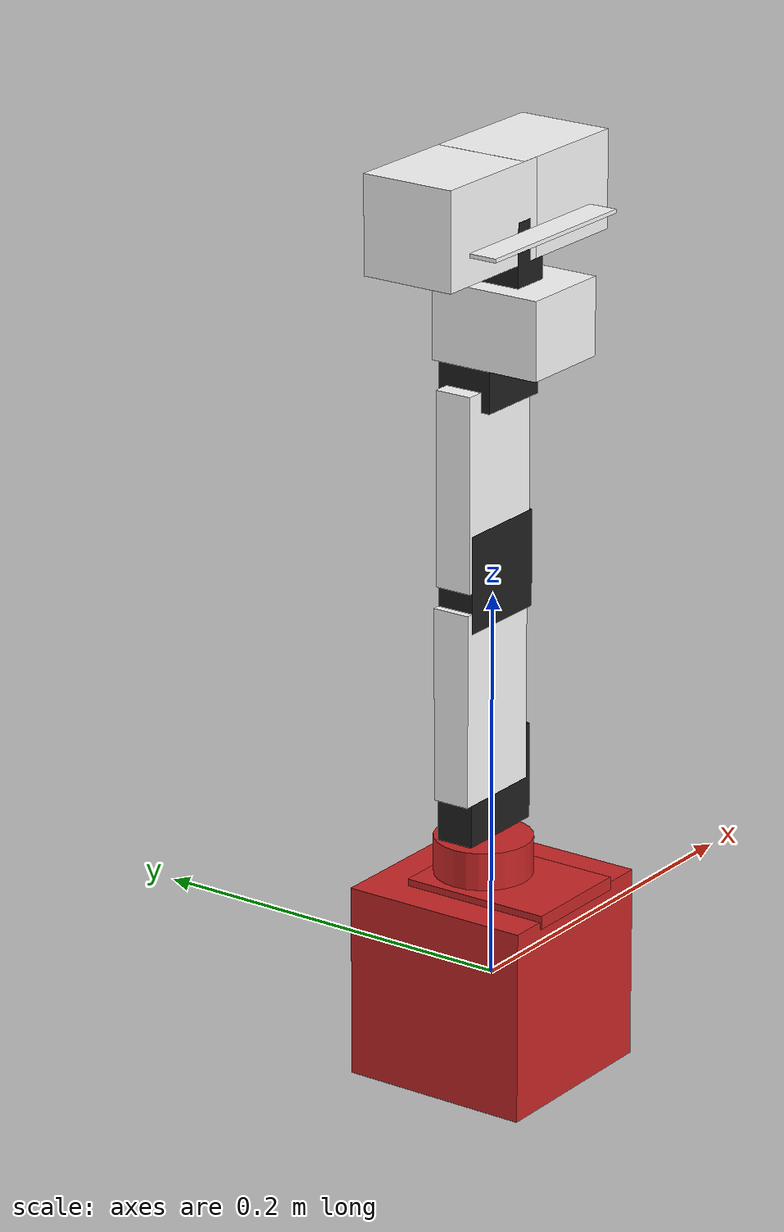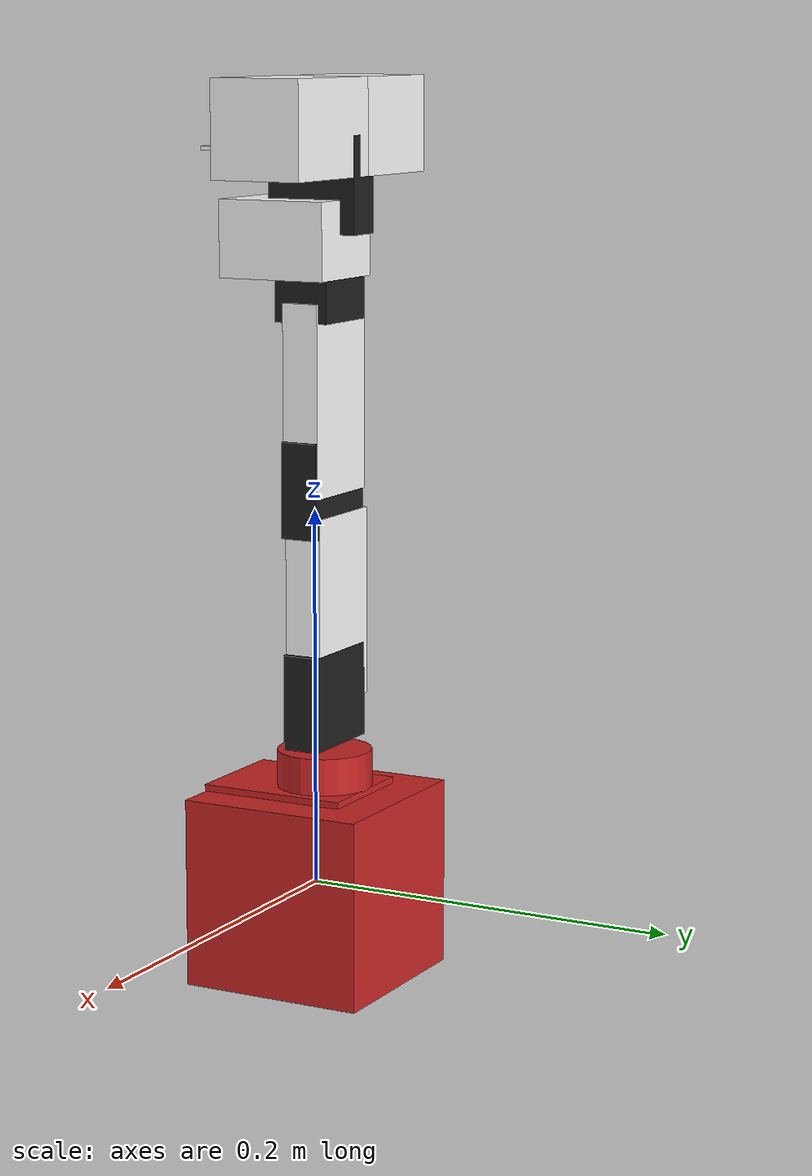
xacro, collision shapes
<?xml version="1.0"?>
 <robot name="arm" xmlns:xacro="http://www.ros.org/wiki/xacro">

<xacro:include filename="$(find arm_description)/urdf/arm.gazebo.xacro"/>
 	<xacro:arg name="robot_name" default="arm"/>
<xacro:include filename="$(find arm_description)/urdf/camera.urdf.xacro"/>
	<xacro:arg name="xyz" default="0 0 0"/>
	<xacro:arg name="rpy" default="0 0 0"/>
	<xacro:arg name="parent" default="base_link"/>
<xacro:include filename="$(find arm_description)/urdf/arm.transmission.xacro"/>
	<xacro:arg name="hardware_interface" default="PositionJointInterface" />

  <!--Base-->
  <link name="base_link">
    <visual>
      <geometry>
        <mesh filename="package://arm_description/meshes/base_link.stl" scale="0.001 0.001 0.001"/>
      </geometry>
      <origin rpy="0 0 0" xyz="0 0 0"/>
    </visual>
    <collision>
      <geometry>
        <!--mesh filename="package://arm_description/meshes/base_link.stl" scale="0.001 0.001 0.001"/-->
        <box size="0.1 0.1 0.1" />
      </geometry>
      <origin rpy="0 0 0" xyz="0 0 0"/>
    </collision>
    <inertial>
      <mass value="0.1"/>
      <inertia ixx="1.06682889e+08" ixy="0.0" ixz="0.0" iyy="9.92165844e+07" iyz="0.0" izz="1.26939175e+08"/>
    </inertial>
  </link>

  <joint name="base_1_2" type="fixed">
    <parent link="base_link"/>
    <child link="base_turn"/>
    <origin xyz="-0.0011 -0.011 0.05"/>
  </joint>

  <link name="base_turn">
    <visual>
      <geometry>
        <mesh filename="package://arm_description/meshes/base_turn.stl" scale="0.001 0.001 0.001"/>
      </geometry>
      <origin rpy="0 0 0" xyz="0 0 0"/>
    </visual>
    <collision>
      <geometry>
          <!--mesh filename="package://arm_description/meshes/base_turn.stl" scale="0.001 0.001 0.001"/-->
          <box size="0.06 0.08 0.007" />
        </geometry>
      <origin rpy="0 0 0" xyz="0 0 0"/>
    </collision>
    <inertial>
      <mass value="0.1"/>
      <inertia ixx="1.35223008e+07" ixy="0.0" ixz="0.0" iyy="8.13814925e+06" iyz="0.0" izz="2.14903814e+07"/>
    </inertial>
  </link>

  <joint name="j0" type="revolute">
    <parent link="base_turn"/>
    <child link="base_turn_rot"/>
    <origin xyz="-0.0 0.0155 0.013" rpy = "0 0 -1.57"/>
    <axis xyz="0 0 1" />
    <limit effort="300" velocity="0.1" lower="-2.57" upper="2.57"/>
  </joint>

  <link name="base_turn_rot">
    <visual>
      <geometry>
        <mesh filename="package://arm_description/meshes/base_turn_table_rot.stl" scale="0.001 0.001 0.001"/>
      </geometry>
    </visual>

    <collision>
      <geometry>
          <!--mesh filename="package://arm_description/meshes/base_turn_table_rot.stl" scale="0.001 0.001 0.001"/-->
          <cylinder radius="0.025" length="0.02" />
        </geometry>
      <origin rpy="0 0 0" xyz="0 0 0"/>
    </collision>

    <inertial>
      <mass value="0.1"/>
      <inertia ixx="3.41992001e+06" ixy="0.0" ixz="0.0" iyy="2.85587836e+06" iyz="0.0" izz="5.84313870e+06"/>
    </inertial>
  </link>

  <joint name="base_turn_rot_dyn2" type="fixed">
    <parent link="base_turn_rot"/>
    <child link="dyn2"/>
    <origin xyz="0 0 0.0385" rpy="0 1.57 1.57 "/>
  </joint>

  <link name="dyn2">
    <visual>
      <geometry>
        <mesh filename="package://arm_description/meshes/dyn.stl" scale="0.01 0.01 0.01"/>
      </geometry>

      <origin rpy="0 0 0" xyz="0 0 0"/>
    </visual>
    <collision>
      <geometry>
          <!--mesh filename="package://arm_description/meshes/dyn.stl" scale="0.01 0.01 0.01"/-->
          <box size="0.05 0.02 0.05" />
        </geometry>
      <origin rpy="0 0 0" xyz="0 0 0"/>
    </collision>
     <inertial>
      <mass value="0.1"/>
      <inertia ixx="6.90013881e+01" ixy="0.0" ixz="0.0" iyy="1.24554875e+02" iyz="0.0" izz="1.04295793e+02"/>
    </inertial>
  </link>

  <joint name="j1" type="revolute">
    <parent link="dyn2"/>
    <child link="dyn2_r"/>
    <origin xyz="0 0 0.0" rpy="0 0 0"/>
    <axis xyz="0 0 1" />
    <limit effort="300" velocity="0.1" lower="-3.14" upper="3.14"/>
  </joint>

  <link name="dyn2_r">

  </link>

  <joint name="dyn2_f4" type="fixed">
    <parent link="dyn2_r"/>
    <child link="f4"/>
    <origin xyz="-0.047 0.0 -0.003" rpy="0 1.57 1.57"/>
  </joint>

  <link name="f4">
    <visual>
      <geometry>
        <mesh filename="package://arm_description/meshes/f4_n_f3.stl" scale="0.001 0.001 0.001"/>
      </geometry>
      <origin rpy="0 0 0" xyz="0 0 0"/>
      <material name="white">
        <color rgba="1 1 1 1"/>
      </material>
    </visual>
    <collision>
      <geometry>
          <!--mesh filename="package://arm_description/meshes/f4_n_f3.stl" scale="0.001 0.001 0.001"/-->
          <box size="0.05 0.1 0.02" />
        </geometry>
      <origin rpy="0 0 0" xyz="0 0 0"/>
    </collision>
     <inertial>
      <mass value="0.1"/>
      <inertia ixx="6.90013881e+01" ixy="0.0" ixz="0.0" iyy="1.24554875e+02" iyz="0.0" izz="1.04295793e+02"/>
    </inertial>
  </link>

  <joint name="d4_dyn3" type="fixed">
    <parent link="f4"/>
    <child link="dyn3"/>
    <origin xyz="-0.004 0.0645 0 " rpy="-1.57 3.14 1.57"/>
  </joint>

  <link name="dyn3">
    <visual>
      <geometry>
        <mesh filename="package://arm_description/meshes/dyn.stl" scale="0.01 0.01 0.01"/>
      </geometry>
      <origin rpy="0 0 0" xyz="0 0 0"/>
    </visual>
    <collision>
      <geometry>
          <!--mesh filename="package://arm_description/meshes/dyn.stl" scale="0.01 0.01 0.01"/-->
          <box size="0.05 0.02 0.05" />
        </geometry>
      <origin rpy="0 0 0" xyz="0 0 0"/>
    </collision>
     <inertial>
      <mass value="0.1"/>
      <inertia ixx="6.90013881e+01" ixy="0.0" ixz="0.0" iyy="1.24554875e+02" iyz="0.0" izz="1.04295793e+02"/>
    </inertial>
  </link>

  <joint name="j2" type="revolute">
    <parent link="dyn3"/>
    <child link="dyn3_r"/>
    <origin xyz="0 0 0.0" rpy="0 0 0"/>
    <axis xyz="0 0 1" />
    <limit effort="300" velocity="0.1" lower="-3.14" upper="3.14"/>
  </joint>

  <link name="dyn3_r">

  </link>

  <joint name="dyn3_f5" type="fixed">
    <parent link="dyn3_r"/>
    <child link="f5"/>
    <origin xyz="-0.046 -0.0 -0.002" rpy="1.57 1.57 3.1415 "/>
  </joint>

  <link name="f5">
    <visual>
      <geometry>
        <mesh filename="package://arm_description/meshes/f4_n_f3.stl" scale="0.001 0.001 0.001"/>
      </geometry>
      <origin rpy="0 0 0" xyz="0 0 0"/>
      <material name="white">
        <color rgba="1 1 1 1"/>
      </material>
    </visual>
    <collision>
      <geometry>
          <!--mesh filename="package://arm_description/meshes/f4_n_f3.stl" scale="0.001 0.001 0.001"/-->
          <box size="0.05 0.1 0.02" />
        </geometry>
      <origin rpy="0 0 0" xyz="0 0 0"/>
    </collision>

    <inertial>
      <mass value="0.1"/>
      <inertia ixx="1.13130695e+07" ixy="0.0" ixz="0.0" iyy="8.78052401e+06" iyz="0.0" izz="1.72940286e+07"/>
    </inertial>
  </link>

  <joint name="f5_dyn4" type="fixed">
    <parent link="f5"/>
    <child link="dyn4"/>
    <origin xyz="-0.004 0.065 -0.0" rpy="-1.57 3.1415 1.57 "/>
  </joint>

  <link name="dyn4">
    <visual>
      <geometry>
        <mesh filename="package://arm_description/meshes/dyn.stl" scale="0.01 0.01 0.01"/>
      </geometry>

      <origin rpy="0 0 0" xyz="0 0 0"/>
    </visual>
    <collision>
      <geometry>
          <!--mesh filename="package://arm_description/meshes/dyn.stl" scale="0.01 0.01 0.01"/-->
          <box size="0.05 0.03 0.04" />
        </geometry>
      <origin rpy="0 0 0" xyz="0 0 0"/>
    </collision>

    <inertial>
      <mass value="0.1"/>
      <inertia ixx="6.90013881e+01" ixy="0.0" ixz="0.0" iyy="1.24554875e+02" iyz="0.0" izz="1.04295793e+02"/>
    </inertial>
  </link>

  <joint name="j3" type="revolute">
    <parent link="dyn4"/>
    <child link="dyn4_r"/>
    <origin xyz="0 0 0.0" rpy="0 0 0"/>
    <axis xyz="0 0 1" />
    <limit effort="300" velocity="0.1" lower="-3.14" upper="3.14"/>
  </joint>

  <link name="dyn4_r">

  </link>

  <joint name="f5_wrist" type="fixed">
    <parent link="dyn4_r"/>
    <child link="wrist"/>
    <origin xyz="-0.017 -0.013 0.003" rpy="1.57 1.57 -1.57"/>
  </joint>

  <link name="wrist">
    <visual>
      <geometry>
        <mesh filename="package://arm_description/meshes/wrist.stl" scale="0.001 0.001 0.001"/>
      </geometry>
      <origin rpy="0 0 0" xyz="0 0 0"/>
      <material name="white">
        <color rgba="1 1 1 1"/>
      </material>
    </visual>
    <collision>
      <geometry>
        <!--mesh filename="package://arm_description/meshes/wrist.stl" scale="0.001 0.001 0.001"/-->
        <box size="0.05 0.06 0.04" />
      </geometry>
      <origin rpy="0 0 0" xyz="0 0 0"/>
    </collision>

     <inertial>
      <mass value="0.1"/>
      <inertia ixx="6.90013881e+01" ixy="0.0" ixz="0.0" iyy="1.24554875e+02" iyz="0.0" izz="1.04295793e+02"/>
    </inertial>
  </link>

  <joint name="wrist_dyn5" type="fixed">
    <parent link="wrist"/>
    <child link="dyn5"/>
    <origin xyz="0.0038 -0.013 0.0275" rpy="0 0 1.57"/>
  </joint>

    <link name="dyn5">
    <visual>
      <geometry>
        <mesh filename="package://arm_description/meshes/dyn.stl" scale="0.01 0.01 0.01"/>
      </geometry>
      <origin rpy="0 0 0" xyz="0 0 0"/>
    </visual>
    <collision>
      <geometry>
          <!--mesh filename="package://arm_description/meshes/dyn.stl" scale="0.01 0.01 0.01"/-->
          <box size="0.05 0.02 0.05" />
        </geometry>
      <origin rpy="0 0 0" xyz="0 0 0"/>
    </collision>

    <inertial>
      <mass value="0.1"/>
      <inertia ixx="6.90013881e+01" ixy="0.0" ixz="0.0" iyy="1.24554875e+02" iyz="0.0" izz="1.04295793e+02"/>
    </inertial>
  </link>

  <joint name="dyn5_dyn5_r" type="fixed">
    <parent link="dyn5"/>
    <child link="dyn5_r"/>
    <origin xyz="0 0 0.0" rpy="0 0 0"/>
    <axis xyz="0 0 1" />
    <limit effort="300" velocity="0.1" lower="-3.14" upper="3.14"/>
  </joint>

  <link name="dyn5_r">

  </link>

  <joint name="wrist_rotate_dyn5" type="fixed">
    <parent link="dyn5_r"/>
    <child link="crawer_base"/>
    <origin xyz="0.015 0 0.019" rpy="0 0 1.57"/>
  </joint>

  <link name="crawer_base">
    <visual>
      <geometry>
        <mesh filename="package://arm_description/meshes/the_crawer_base.stl" scale="0.001 0.001 0.001"/>
      </geometry>
      <origin rpy="0 0 0" xyz="0 0 0"/>
      <material name="white">
        <color rgba="1 1 1 1"/>
      </material>
    </visual>
    <collision>
      <geometry>
          <!--mesh filename="package://arm_description/meshes/the_crawer_base.stl" scale="0.001 0.001 0.001"/-->
          <box size="0.1 0.05 0.002" />
        </geometry>
      <origin rpy="0 0 0" xyz="0 0 0"/>
    </collision>

    <inertial>
      <mass value="0.1"/>
      <inertia ixx="6.90013881e+01" ixy="0.0" ixz="0.0" iyy="1.24554875e+02" iyz="0.0" izz="1.04295793e+02"/>
    </inertial>
  </link>

  <joint name="crawer_base_crawer_left" type="fixed">
    <parent link="crawer_base"/>
    <child link="crawer_left"/>
    <origin xyz="-0.03 0.015 0.01" rpy="0 -1.57 0"/>
  </joint>

  <link name="crawer_left">
    <visual>
      <geometry>
        <mesh filename="package://arm_description/meshes/the_crawer.stl" scale="0.001 0.001 0.001"/>
      </geometry>
      <origin rpy="0 0 0" xyz="0 0 0"/>
      <material name="white">
        <color rgba="1 1 1 1"/>
      </material>
    </visual>
    <collision>
      <geometry>
          <!--mesh filename="package://arm_description/meshes/the_crawer.stl" scale="0.001 0.001 0.001"/-->
          <box size="0.05 0.05 0.07" />
        </geometry>
      <origin rpy="0 0 0" xyz="0 0 0"/>
    </collision>

    <inertial>
      <mass value="0.1"/>
      <inertia ixx="6.90013881e+01" ixy="0.0" ixz="0.0" iyy="1.24554875e+02" iyz="0.0" izz="1.04295793e+02"/>
    </inertial>
  </link>

  <joint name="crawer_base_crawer_right" type="fixed">
    <parent link="crawer_base"/>
    <child link="crawer_right"/>
    <origin xyz="0.03 0.015 0.01" rpy="3.1415 -1.57 0"/>
  </joint>

  <link name="crawer_right">
    <visual>
      <geometry>
        <mesh filename="package://arm_description/meshes/the_crawer.stl" scale="0.001 0.001 0.001"/>
      </geometry>
      <origin rpy="0 0 0" xyz="0 0 0"/>
      <material name="white">
        <color rgba="1 1 1 1"/>
      </material>
    </visual>
    <collision>
      <geometry>
          <!--mesh filename="package://arm_description/meshes/the_crawer.stl" scale="0.001 0.001 0.001"/-->
          <box size="0.05 0.05 0.07" />
        </geometry>
      <origin rpy="0 0 0" xyz="0 0 0"/>
    </collision>

    <inertial>
      <mass value="0.1"/>
      <inertia ixx="6.90013881e+01" ixy="0.0" ixz="0.0" iyy="1.24554875e+02" iyz="0.0" izz="1.04295793e+02"/>
    </inertial>
  </link>

  <xacro:arm_gazebo robot_name="$(arg robot_name)" />
  <xacro:camera_sensor xyz="$(arg xyz)" rpy="$(arg rpy)" parent="$(arg parent)"/>
  <xacro:arm_transmission hardware_interface="$(arg hardware_interface)" robot_name="$(arg robot_name)" />

</robot>

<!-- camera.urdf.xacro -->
<robot xmlns:xacro="http://www.ros.org/wiki/xacro" name="camera">

    <xacro:property name="pi" value="3.1415926535897931"/>

    <xacro:macro name="camera_sensor" params="xyz rpy parent">

        <joint name="camera_sensor_joint" type="fixed">
            <axis xyz="0 1 0" />
            <origin xyz="${xyz}" rpy="${rpy}"/>
            <parent link="${parent}"/>
            <child link="camera_link"/>
        </joint>

        <link name="camera_link">
            <collision>
                <origin xyz="0 0 0" rpy="0 0 0"/>
                <geometry>
                    <box size="0.02 0.08 0.05"/>
                </geometry>
            </collision>
            <visual>
                <origin xyz="0 0 0" rpy="0 0 0"/>
                <geometry>
                    <box size="0.02 0.08 0.05"/>
                </geometry>
                <material name="iRobot/Green"/>
            </visual>
            <inertial>
                <mass value="0.0001" />
                <origin xyz="0 0 0" rpy="0 0 ${pi}"/>
                <inertia ixx="0.0000001" ixy="0" ixz="0" iyy="0.0000001" iyz="0" izz="0.0000001" />
            </inertial>
        </link>

        <gazebo reference="camera_link">
            <sensor type="camera" name="camera">
                <update_rate>30.0</update_rate>
                <camera name="head">
                    <horizontal_fov>1.3962634</horizontal_fov>
                    <image>
                        <width>800</width>
                        <height>600</height>
                        <format>R8G8B8</format>
                    </image>
                    <clip>
                        <near>0.02</near>
                        <far>300</far>
                    </clip>
                    <noise>
                        <type>gaussian</type>
                        <mean>0.0</mean>
                        <stddev>0.007</stddev>
                    </noise>
                </camera>
                <plugin name="camera_controller" filename="libgazebo_ros_camera.so">
                    <alwaysOn>true</alwaysOn>
                    <updateRate>0.0</updateRate>
                    <cameraName>iRobot/camera</cameraName>
                    <imageTopicName>image_raw</imageTopicName>
                    <cameraInfoTopicName>camera_info</cameraInfoTopicName>
                    <frameName>camera_link</frameName>
                    <hackBaseline>0.07</hackBaseline>
                    <distortionK1>0.0</distortionK1>
                    <distortionK2>0.0</distortionK2>
                    <distortionK3>0.0</distortionK3>
                    <distortionT1>0.0</distortionT1>
                    <distortionT2>0.0</distortionT2>
                </plugin>
            </sensor>
    </gazebo>

    </xacro:macro>

</robot>
